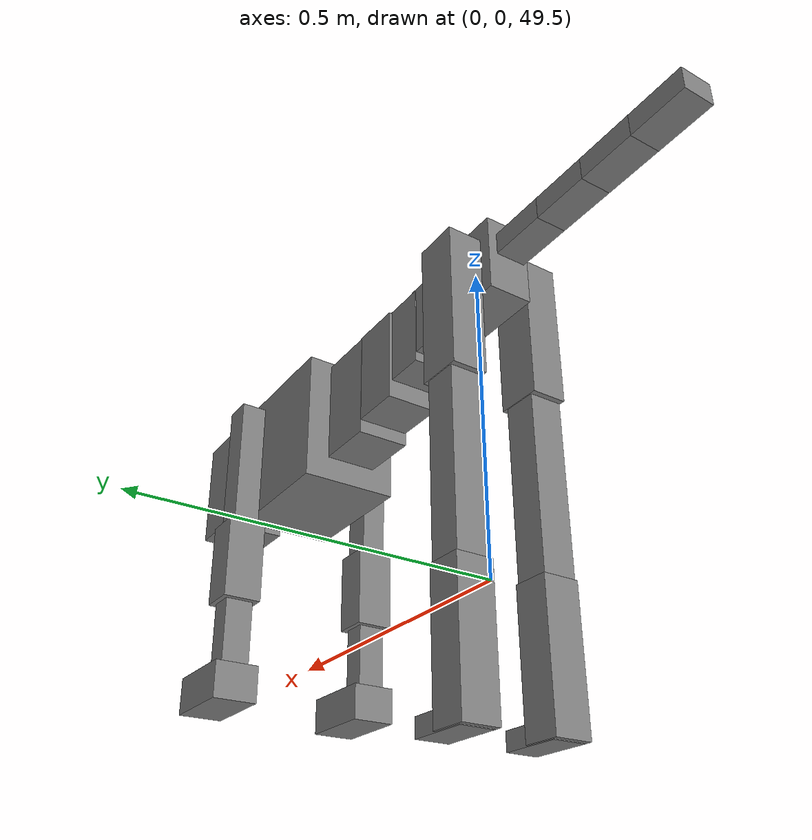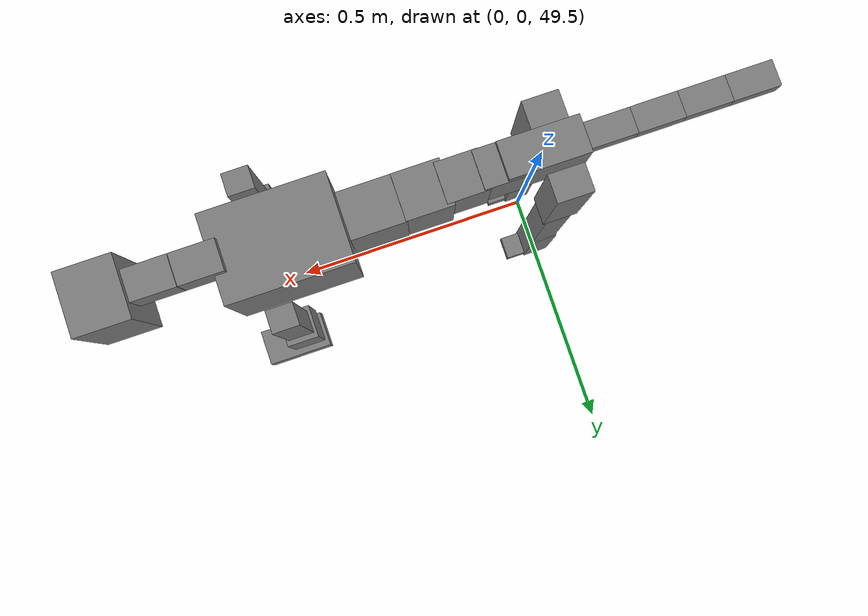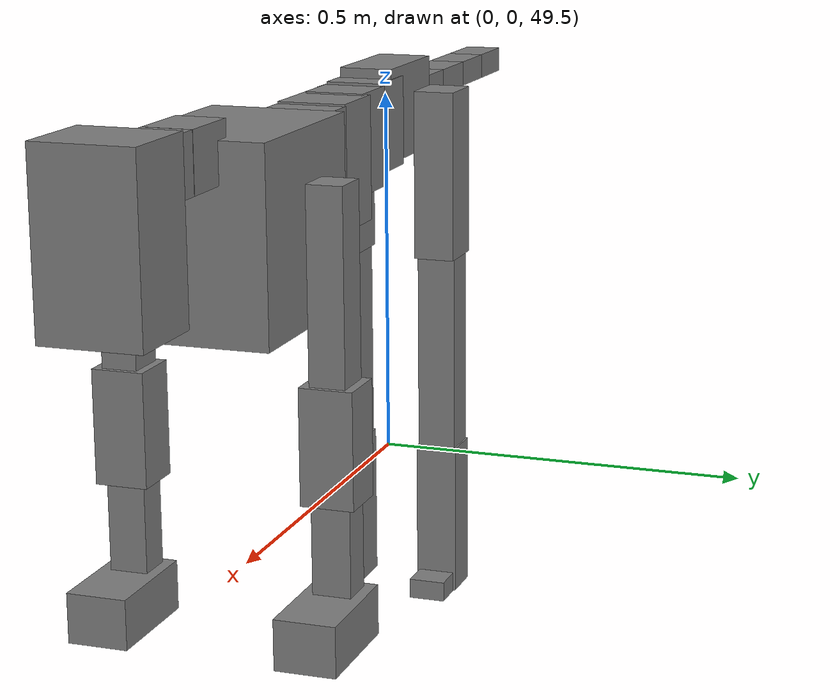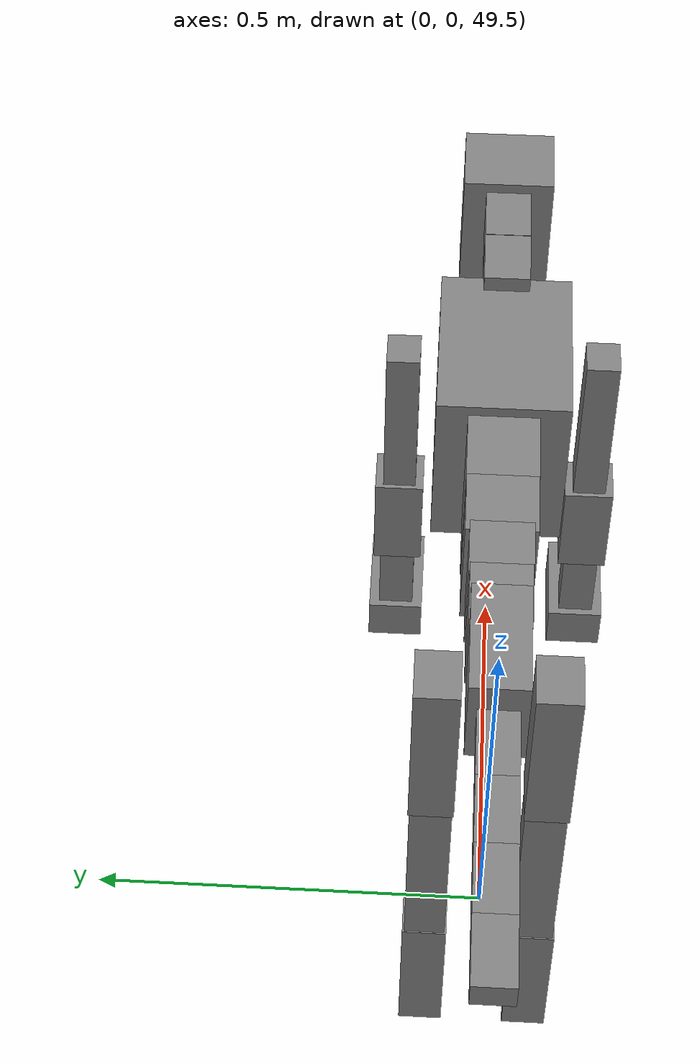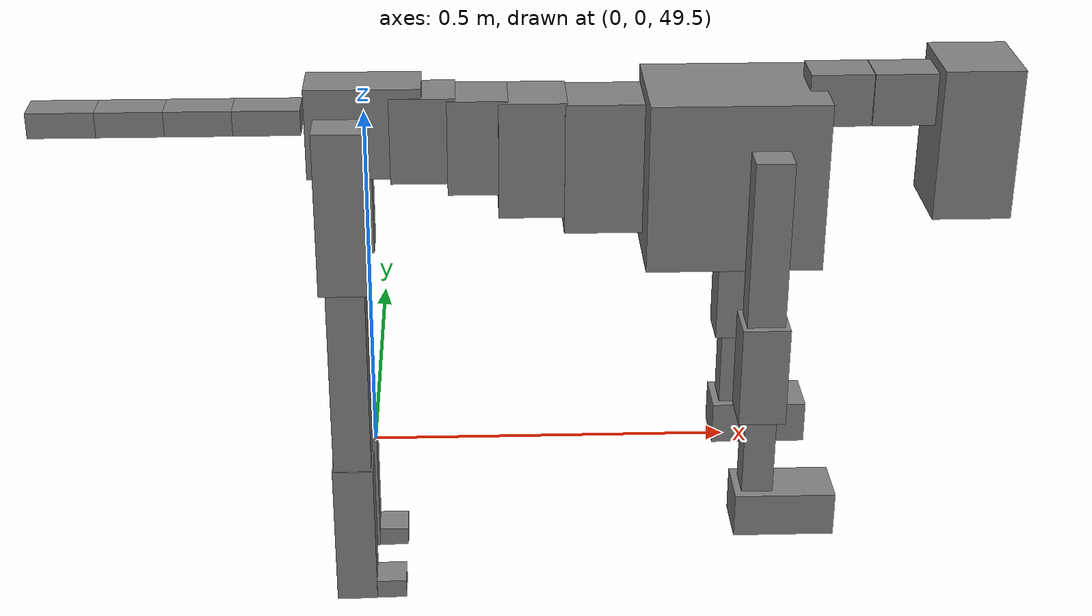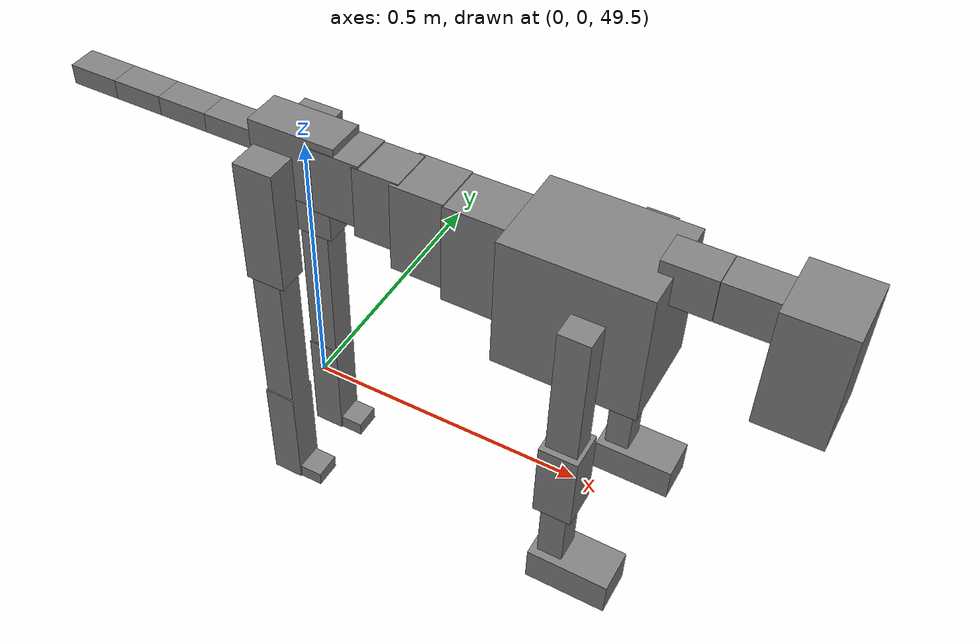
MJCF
<mujoco model="dog">

    <default>
        <joint armature="0.02" stiffness="1" damping="0.2" limited="true"/>
        <geom condim="3" friction="1 0.05 0.05" margin="0.01"/>
        <motor ctrllimited="true" ctrlrange="-1.0 1.0" forcelimited="true" gear="50"/>
    </default>

    <compiler inertiafromgeom="true" angle="radian"/>

    <option timestep="0.016" iterations="50" tolerance="1e-10" solver="Newton" jacobian="dense" cone="pyramidal"/>

    <size nconmax="20000" njmax="60000" nstack="5000000"/>
    <visual>
        <map force="0.1" zfar="30"/>
        <rgba haze="0.15 0.25 0.35 1"/>
        <quality shadowsize="2048"/>
        <global offwidth="800" offheight="800"/>
    </visual>

    <asset>
        <texture type="skybox" builtin="gradient" rgb1="0.3 0.5 0.7" rgb2="0 0 0" width="512" height="512"/>
        <texture name="texplane" type="2d" builtin="checker" rgb1=".2 .3 .4" rgb2=".1 0.15 0.2" width="512" height="512"
                 mark="cross" markrgb=".8 .8 .8"/>
        <texture name="texgeom" type="cube" builtin="flat" mark="cross" width="127" height="1278" rgb1="0.8 0.6 0.4"
                 rgb2="0.8 0.6 0.4" markrgb="1 1 1" random="0.01"/>

        <material name="matplane" reflectance="0.3" texture="texplane" texrepeat="1 1" texuniform="true"/>
        <material name="matgeom" texture="texgeom" texuniform="true" rgba="0.8 0.6 .4 1"/>
    </asset>

    <worldbody>
        <geom name="floor" pos="0 0 0" size="0 0 .25" type="plane" material="matplane" condim="3"/>

        <light directional="false" diffuse=".2 .2 .2" specular="0 0 0" pos="0 0 5" dir="0 0 -1" castshadow="false"/>
        <light mode="targetbodycom" target="torso" directional="false" diffuse=".8 .8 .8" specular="0.3 0.3 0.3"
               pos="0 0 4.0" dir="0 0 -1"/>

        <body name="root" pos="0 0 50">
            <freejoint name="root_1"/>
            <geom type="box" pos="0 0 -0.02" size="0.0774  0.0358  0.063" density="2030"/>

            <body name="spine1" pos="0.054 0 0">
                <joint name="spine1_y" axis="0 1 0" range="0 0.7" limited="true"/>
                <geom type="box" pos="0.02375 0 -0.03" size="0.04375  0.0375  0.05985" density="2030"/>

                <body name="spine2" pos="0.0612 0 0">
                    <joint name="spine2_y" axis="0 1 0" range="-0.15 0.15" limited="true"/>
                    <geom type="box" pos="0.03555  0  -0.04" size="0.04055  0.039  0.06615" density="2030"/>

                    <body name="spine3" pos="0.0730 0 0">
                        <joint name="spine3_y" axis="0 1 0" range="-0.15 0.15" limited="true"/>
                        <geom type="box" pos="0.03555  0  -0.057" size="0.04555  0.0445  0.081" density="2030"/>

                        <body name="spine4" pos="0.0780 0 0">
                            <joint name="spine4_y" axis="0 1 0" range="-0.15 0.15" limited="true"/>
                            <geom type="box" pos="0.05265  0  -0.07" size="0.05265  0.045  0.09135" density="2030"/>

                            <body name="torso" pos="0.1082 0 0">
                                <joint name="torso_y" axis="0 1 0" range="-0.15 0.15" limited="true"/>
                                <geom type="box" pos="0.11925  0  -0.085" size="0.11925  0.085  0.11745"
                                      density="2030"/>

                                <body name="neck1" pos="0.2160  0   0.0180">
                                    <joint name="neck1_y" axis="0 1 0" range="-1.2  -1" limited="true"/>
                                    <geom type="box" pos="0.0423  0  0" size="0.0423  0.03  0.036" density="2325"/>

                                    <body name="neck2" pos="0.0853  0  0">
                                        <joint name="neck2_y" axis="0 1 0" range="0.1  0" limited="true"/>
                                        <geom type="box" pos="0.0423  0  0" size="0.0423  0.03  0.036" density="2325"/>

                                        <body name="head" pos="0.0853  0  0">
                                            <joint name="head_y" axis="0 1 0" range="-0.3  -0.2" limited="true"/>
                                            <geom type="box" pos="0.0531  0  -0.055" size="0.0531  0.06  0.1044"
                                                  density="4030"/>

                                        </body>
                                    </body>
                                </body>

                                <body name="front_shoulder" pos="0.156  0   -0.0480">
                                    <joint name="front_shoulder_y" axis="0 1 0" range="-1 1.5" limited="true"/>
                                    <geom type="box" pos="0 0.13 -0.1033" size="0.0257  0.0220  0.1300" density="1158"/>
                                    <geom type="box" pos="0 -0.13 -0.1033" size="0.0257  0.0220  0.1300"
                                          density="1158"/>

                                    <body name="front_elbow" pos="0  0  -0.2067">
                                        <joint name="front_elbow_y" axis="0 1 0" range="-2 0" limited="true"/>
                                        <geom type="box" pos="0 0.13 -0.0707" size="0.0320  0.0327  0.0707"
                                              density="1081"/>
                                        <geom type="box" pos="0 -0.13 -0.0707" size="0.0320  0.0327  0.0707"
                                              density="1081"/>

                                        <body name="front_wrist" pos="0  0  -0.1414">
                                            <joint name="front_wrist_y" axis="0 1 0" range="-0.2 0" limited="true"/>
                                            <geom type="box" pos="0 0.13 -0.0626" size="0.0214  0.0238  0.0757"
                                                  density="1664"/>
                                            <geom type="box" pos="0 -0.13 -0.0626" size="0.0214  0.0238  0.0757"
                                                  density="1664"/>

                                            <body name="front_finger_end" pos="0  0  -0.1252">
                                                <joint name="front_finger_y" axis="0 1 0" range="-0.4 1"
                                                       limited="true"/>
                                                <geom type="box" pos="0.0377  0.13  -0.0161"
                                                      size="0.0691  0.0377  0.0311" density="1515"/>
                                                <geom type="box" pos="0.0377  -0.13  -0.0161"
                                                      size="0.0691  0.0377  0.0311" density="1515"/>

                                            </body>

                                        </body>
                                    </body>
                                </body>

                            </body>
                        </body>
                    </body>
                </body>
            </body>

            <body name="back_hip" pos="-0.03 0 -0.018">
                <joint name="back_hip_y" axis="0 1 0" range="-1.5 0.3" limited="true"/>
                <geom type="box" pos="0 0.07 -0.0929" size="0.0354  0.0277  0.1157" density="1154"/>
                <geom type="box" pos="0 -0.07 -0.0929" size="0.0354  0.0277  0.1157" density="1154"/>

                <body name="back_knee" pos="0  0  -0.1857">
                    <joint name="back_knee_y" axis="0 1 0" range="0 2.8" limited="true"/>
                    <geom type="box" pos="0 0.07 -0.1529" size="0.0265  0.0261  0.1685" density="1227"/>
                    <geom type="box" pos="0 -0.07 -0.1529" size="0.0265  0.0261  0.1685" density="1227"/>

                    <body name="back_ankle" pos="0  0  -0.3058">
                        <joint name="back_ankle_y" axis="0 1 0" range="-2.2 0" limited="true"/>
                        <geom type="box" pos="0 0.07 -0.0942" size="0.0285  0.0285  0.1055" density="1284"/>
                        <geom type="box" pos="0 -0.07 -0.0942" size="0.0285  0.0285  0.1055" density="1284"/>

                        <body name="back_toe_end" pos="0  0  -0.1885">
                            <joint name="back_toe_y" axis="0 1 0" range="-0.4 1" limited="true"/>
                            <geom type="box" pos="0.0250  0.07  0.0013" size="0.0457  0.0250  0.0137" density="1515"/>
                            <geom type="box" pos="0.0250  -0.07  0.0013" size="0.0457  0.0250  0.0137" density="1515"/>

                        </body>
                    </body>
                </body>
            </body>

            <body name="tail1" pos="-0.074 0 -0.006">
                <joint name="tail1_y" axis="0 1 0" range="-0.2 0.2" limited="true"/>
                <geom type="box" pos="-0.0536  0  0" size="0.045  0.025  0.0175" density="1587"/>

                <body name="tail2" pos="-0.09 0 0">
                    <joint name="tail2_y" axis="0 1 0" range="-0.2 0.2" limited="true"/>
                    <geom type="box" pos="-0.0536  0  0" size="0.045  0.025  0.0175" density="1587"/>

                    <body name="tail3" pos="-0.09 0 0">
                        <joint name="tail3_y" axis="0 1 0" range="-0.2 0.2" limited="true"/>
                        <geom type="box" pos="-0.0536  0  0" size="0.045  0.025  0.0175" density="1587"/>

                        <body name="tail4" pos="-0.09 0 0">
                            <joint name="tail4_y" axis="0 1 0" range="-0.2 0.2" limited="true"/>
                            <geom type="box" pos="-0.0536  0  0" size="0.045  0.025  0.0175" density="1587"/>

                        </body>
                    </body>
                </body>
            </body>
        </body>
    </worldbody>

    <actuator>
        <motor joint="spine1_y" forcerange="-150 150     "/>
        <motor joint="spine2_y" forcerange="-150 150     "/>
        <motor joint="spine3_y" forcerange="-150 150     "/>
        <motor joint="spine4_y" forcerange="-150 150     "/>
        <motor joint="torso_y" forcerange="-150 150     "/>
        <motor joint="neck1_y" forcerange="-100 100       "/>
        <motor joint="neck2_y" forcerange="-100 100       "/>
        <motor joint="head_y" forcerange="-150 150       "/>
        <motor joint="front_shoulder_y" forcerange="-117.85 128.49"/>
        <motor joint="front_elbow_y" forcerange="-186.59 150.96"/>
        <motor joint="front_wrist_y" forcerange="-132.67 57.85"/>
        <motor joint="front_finger_y" forcerange="-72.75 88.16"/>
        <motor joint="back_hip_y" forcerange="-260.08 309.82"/>
        <motor joint="back_knee_y" forcerange="-323.80 256.14"/>
        <motor joint="back_angle_y" forcerange="-196.23 159.53"/>
        <motor joint="back_toe_y" forcerange="-71.11 48.53"/>
        <motor joint="tail1_y" forcerange="-50 50     "/>
        <motor joint="tail2_y" forcerange="-50 50     "/>
        <motor joint="tail3_y" forcerange="-50 50     "/>
        <motor joint="tail4_y" forcerange="-50 50     "/>
    </actuator>
</mujoco>
